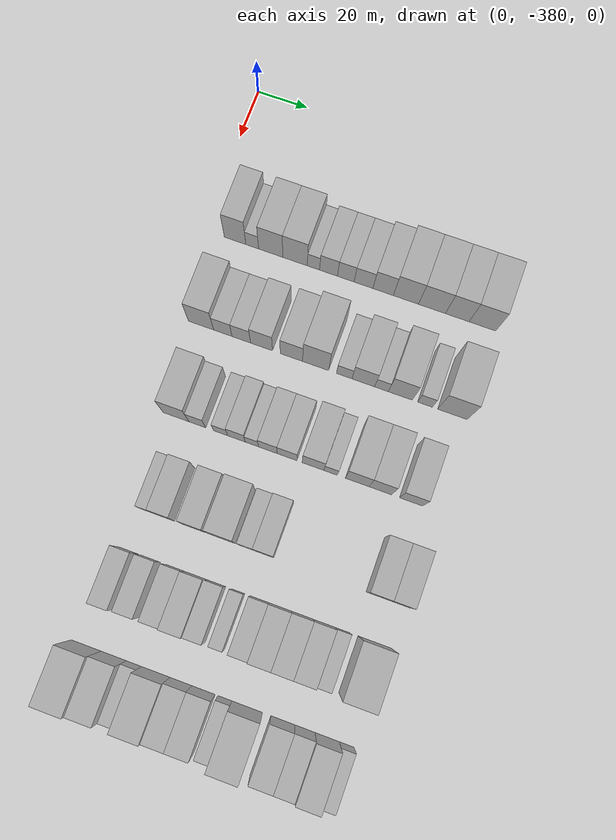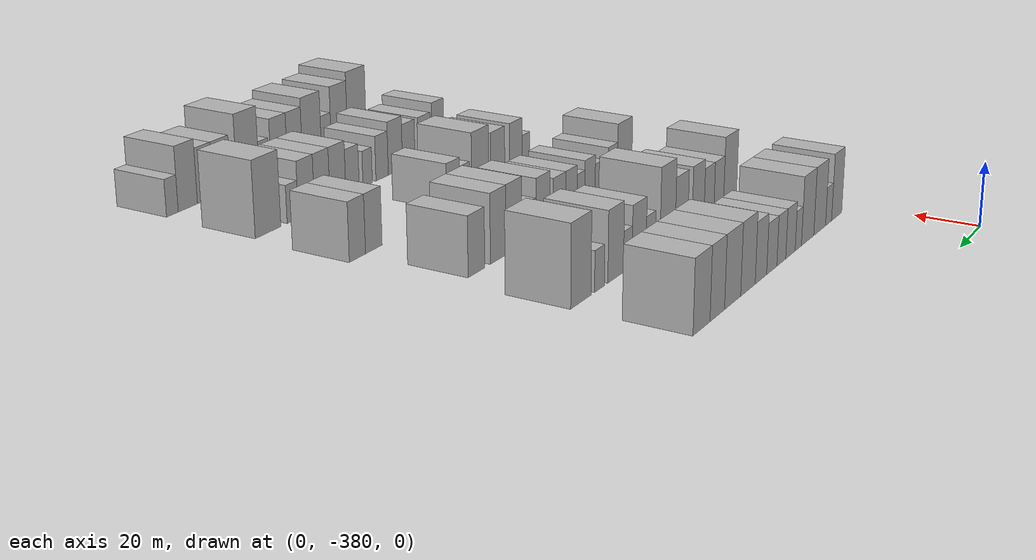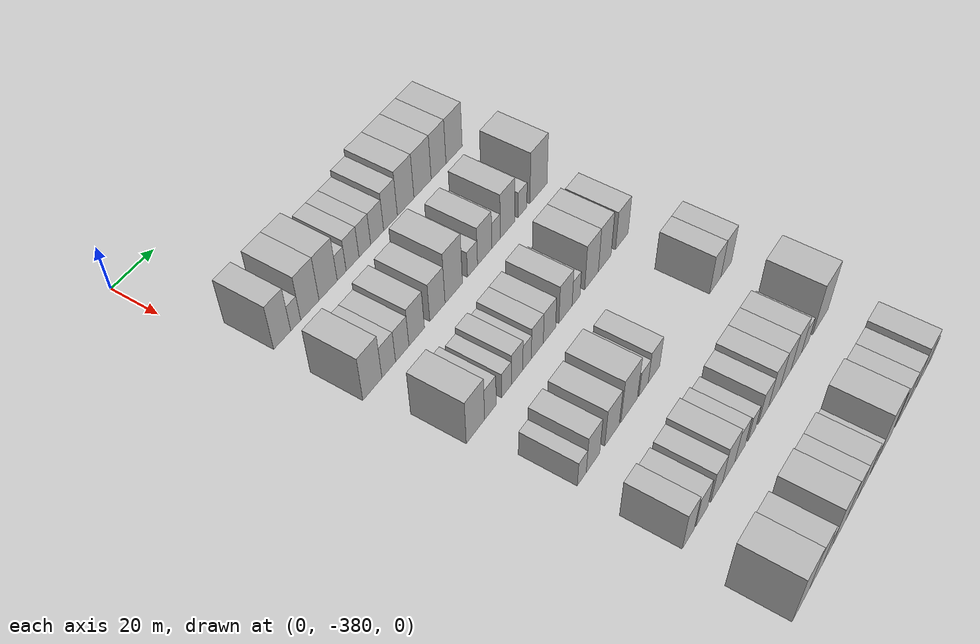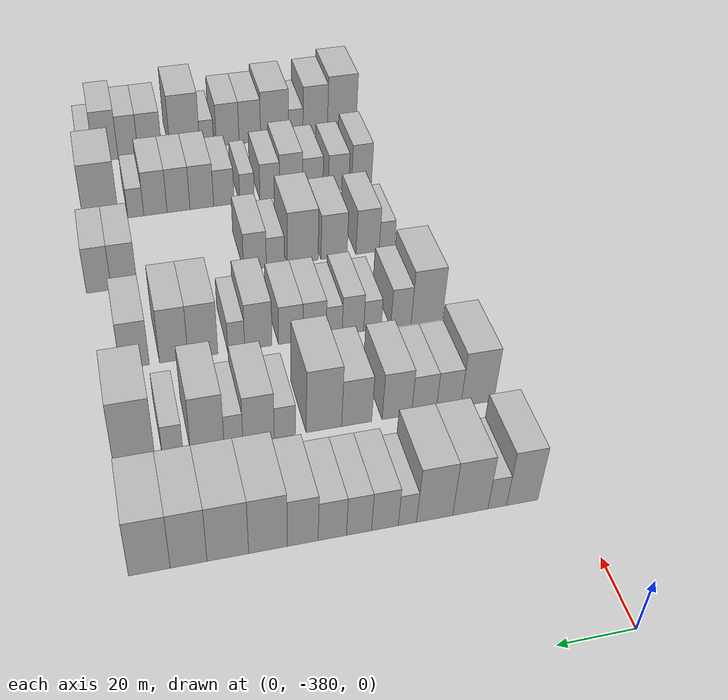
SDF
<sdf version="1.6">
 <world name="default">
  <model name="building_21">
   <static>1</static>
   <pose>50.0000 -367.0154 0 0.000000 0.000000 0.000000</pose>
   <link name="link">
    <pose>0 0 10.50 0 0 0</pose>
    <collision name="collision"><geometry><box><size>20.0000 8.5805 21.0000</size></box></geometry></collision>
    <visual name="visual">
     <cast_shadows>0</cast_shadows>
     <geometry><box><size>20.0000 8.5805 21.0000</size></box></geometry>
     <material>
      <script>
       <uri>model://HANNAS_wall/materials/scripts</uri>
       <uri>model://HANNAS_wall/materials/textures</uri>
       <name>vrc/HANNAS_wall</name>
      </script>
     </material>
    </visual>
   </link>
  </model>
  <model name="building_22">
   <static>1</static>
   <pose>50.0000 -360.1869 0 0.000000 0.000000 0.000000</pose>
   <link name="link">
    <pose>0 0 6.00 0 0 0</pose>
    <collision name="collision"><geometry><box><size>20.0000 5.0764 12.0000</size></box></geometry></collision>
    <visual name="visual">
     <cast_shadows>0</cast_shadows>
     <geometry><box><size>20.0000 5.0764 12.0000</size></box></geometry>
     <material>
      <script>
       <uri>model://HANNAS_wall/materials/scripts</uri>
       <uri>model://HANNAS_wall/materials/textures</uri>
       <name>vrc/HANNAS_wall</name>
      </script>
     </material>
    </visual>
   </link>
  </model>
  <model name="building_23">
   <static>1</static>
   <pose>50.0000 -352.8688 0 0.000000 0.000000 0.000000</pose>
   <link name="link">
    <pose>0 0 10.50 0 0 0</pose>
    <collision name="collision"><geometry><box><size>20.0000 9.5598 21.0000</size></box></geometry></collision>
    <visual name="visual">
     <cast_shadows>0</cast_shadows>
     <geometry><box><size>20.0000 9.5598 21.0000</size></box></geometry>
     <material>
      <script>
       <uri>model://HANNAS_wall/materials/scripts</uri>
       <uri>model://HANNAS_wall/materials/textures</uri>
       <name>vrc/HANNAS_wall</name>
      </script>
     </material>
    </visual>
   </link>
  </model>
  <model name="building_24">
   <static>1</static>
   <pose>50.0000 -343.2415 0 0.000000 0.000000 0.000000</pose>
   <link name="link">
    <pose>0 0 10.50 0 0 0</pose>
    <collision name="collision"><geometry><box><size>20.0000 9.6949 21.0000</size></box></geometry></collision>
    <visual name="visual">
     <cast_shadows>0</cast_shadows>
     <geometry><box><size>20.0000 9.6949 21.0000</size></box></geometry>
     <material>
      <script>
       <uri>model://HANNAS_wall/materials/scripts</uri>
       <uri>model://HANNAS_wall/materials/textures</uri>
       <name>vrc/HANNAS_wall</name>
      </script>
     </material>
    </visual>
   </link>
  </model>
  <model name="building_25">
   <static>1</static>
   <pose>50.0000 -335.9683 0 0.000000 0.000000 0.000000</pose>
   <link name="link">
    <pose>0 0 6.00 0 0 0</pose>
    <collision name="collision"><geometry><box><size>20.0000 4.8514 12.0000</size></box></geometry></collision>
    <visual name="visual">
     <cast_shadows>0</cast_shadows>
     <geometry><box><size>20.0000 4.8514 12.0000</size></box></geometry>
     <material>
      <script>
       <uri>model://HANNAS_wall/materials/scripts</uri>
       <uri>model://HANNAS_wall/materials/textures</uri>
       <name>vrc/HANNAS_wall</name>
      </script>
     </material>
    </visual>
   </link>
  </model>
  <model name="building_26">
   <static>1</static>
   <pose>50.0000 -330.0134 0 0.000000 0.000000 0.000000</pose>
   <link name="link">
    <pose>0 0 7.50 0 0 0</pose>
    <collision name="collision"><geometry><box><size>20.0000 7.0583 15.0000</size></box></geometry></collision>
    <visual name="visual">
     <cast_shadows>0</cast_shadows>
     <geometry><box><size>20.0000 7.0583 15.0000</size></box></geometry>
     <material>
      <script>
       <uri>model://HANNAS_wall/materials/scripts</uri>
       <uri>model://HANNAS_wall/materials/textures</uri>
       <name>vrc/HANNAS_wall</name>
      </script>
     </material>
    </visual>
   </link>
  </model>
  <model name="building_27">
   <static>1</static>
   <pose>50.0000 -323.2139 0 0.000000 0.000000 0.000000</pose>
   <link name="link">
    <pose>0 0 7.50 0 0 0</pose>
    <collision name="collision"><geometry><box><size>20.0000 6.5406 15.0000</size></box></geometry></collision>
    <visual name="visual">
     <cast_shadows>0</cast_shadows>
     <geometry><box><size>20.0000 6.5406 15.0000</size></box></geometry>
     <material>
      <script>
       <uri>model://HANNAS_wall/materials/scripts</uri>
       <uri>model://HANNAS_wall/materials/textures</uri>
       <name>vrc/HANNAS_wall</name>
      </script>
     </material>
    </visual>
   </link>
  </model>
  <model name="building_28">
   <static>1</static>
   <pose>50.0000 -316.2606 0 0.000000 0.000000 0.000000</pose>
   <link name="link">
    <pose>0 0 7.50 0 0 0</pose>
    <collision name="collision"><geometry><box><size>20.0000 7.3660 15.0000</size></box></geometry></collision>
    <visual name="visual">
     <cast_shadows>0</cast_shadows>
     <geometry><box><size>20.0000 7.3660 15.0000</size></box></geometry>
     <material>
      <script>
       <uri>model://HANNAS_wall/materials/scripts</uri>
       <uri>model://HANNAS_wall/materials/textures</uri>
       <name>vrc/HANNAS_wall</name>
      </script>
     </material>
    </visual>
   </link>
  </model>
  <model name="building_29">
   <static>1</static>
   <pose>50.0000 -308.5923 0 0.000000 0.000000 0.000000</pose>
   <link name="link">
    <pose>0 0 9.00 0 0 0</pose>
    <collision name="collision"><geometry><box><size>20.0000 7.9706 18.0000</size></box></geometry></collision>
    <visual name="visual">
     <cast_shadows>0</cast_shadows>
     <geometry><box><size>20.0000 7.9706 18.0000</size></box></geometry>
     <material>
      <script>
       <uri>model://HANNAS_wall/materials/scripts</uri>
       <uri>model://HANNAS_wall/materials/textures</uri>
       <name>vrc/HANNAS_wall</name>
      </script>
     </material>
    </visual>
   </link>
  </model>
  <model name="building_30">
   <static>1</static>
   <pose>50.0000 -299.7059 0 0.000000 0.000000 0.000000</pose>
   <link name="link">
    <pose>0 0 10.50 0 0 0</pose>
    <collision name="collision"><geometry><box><size>20.0000 9.8024 21.0000</size></box></geometry></collision>
    <visual name="visual">
     <cast_shadows>0</cast_shadows>
     <geometry><box><size>20.0000 9.8024 21.0000</size></box></geometry>
     <material>
      <script>
       <uri>model://HANNAS_wall/materials/scripts</uri>
       <uri>model://HANNAS_wall/materials/textures</uri>
       <name>vrc/HANNAS_wall</name>
      </script>
     </material>
    </visual>
   </link>
  </model>
  <model name="building_31">
   <static>1</static>
   <pose>50.0000 -289.5650 0 0.000000 0.000000 0.000000</pose>
   <link name="link">
    <pose>0 0 10.50 0 0 0</pose>
    <collision name="collision"><geometry><box><size>20.0000 10.4794 21.0000</size></box></geometry></collision>
    <visual name="visual">
     <cast_shadows>0</cast_shadows>
     <geometry><box><size>20.0000 10.4794 21.0000</size></box></geometry>
     <material>
      <script>
       <uri>model://HANNAS_wall/materials/scripts</uri>
       <uri>model://HANNAS_wall/materials/textures</uri>
       <name>vrc/HANNAS_wall</name>
      </script>
     </material>
    </visual>
   </link>
  </model>
  <model name="building_32">
   <static>1</static>
   <pose>50.0000 -279.7519 0 0.000000 0.000000 0.000000</pose>
   <link name="link">
    <pose>0 0 10.50 0 0 0</pose>
    <collision name="collision"><geometry><box><size>20.0000 9.1468 21.0000</size></box></geometry></collision>
    <visual name="visual">
     <cast_shadows>0</cast_shadows>
     <geometry><box><size>20.0000 9.1468 21.0000</size></box></geometry>
     <material>
      <script>
       <uri>model://HANNAS_wall/materials/scripts</uri>
       <uri>model://HANNAS_wall/materials/textures</uri>
       <name>vrc/HANNAS_wall</name>
      </script>
     </material>
    </visual>
   </link>
  </model>
  <model name="building_33">
   <static>1</static>
   <pose>50.0000 -270.0354 0 0.000000 0.000000 0.000000</pose>
   <link name="link">
    <pose>0 0 10.50 0 0 0</pose>
    <collision name="collision"><geometry><box><size>20.0000 10.2861 21.0000</size></box></geometry></collision>
    <visual name="visual">
     <cast_shadows>0</cast_shadows>
     <geometry><box><size>20.0000 10.2861 21.0000</size></box></geometry>
     <material>
      <script>
       <uri>model://HANNAS_wall/materials/scripts</uri>
       <uri>model://HANNAS_wall/materials/textures</uri>
       <name>vrc/HANNAS_wall</name>
      </script>
     </material>
    </visual>
   </link>
  </model>
  <model name="building_151">
   <static>1</static>
   <pose>85.0000 -367.1614 0 0.000000 0.000000 0.000000</pose>
   <link name="link">
    <pose>0 0 10.50 0 0 0</pose>
    <collision name="collision"><geometry><box><size>20.0000 9.8823 21.0000</size></box></geometry></collision>
    <visual name="visual">
     <cast_shadows>0</cast_shadows>
     <geometry><box><size>20.0000 9.8823 21.0000</size></box></geometry>
     <material>
      <script>
       <uri>model://HANNAS_wall/materials/scripts</uri>
       <uri>model://HANNAS_wall/materials/textures</uri>
       <name>vrc/HANNAS_wall</name>
      </script>
     </material>
    </visual>
   </link>
  </model>
  <model name="building_152">
   <static>1</static>
   <pose>85.0000 -358.6067 0 0.000000 0.000000 0.000000</pose>
   <link name="link">
    <pose>0 0 7.50 0 0 0</pose>
    <collision name="collision"><geometry><box><size>20.0000 7.2273 15.0000</size></box></geometry></collision>
    <visual name="visual">
     <cast_shadows>0</cast_shadows>
     <geometry><box><size>20.0000 7.2273 15.0000</size></box></geometry>
     <material>
      <script>
       <uri>model://HANNAS_wall/materials/scripts</uri>
       <uri>model://HANNAS_wall/materials/textures</uri>
       <name>vrc/HANNAS_wall</name>
      </script>
     </material>
    </visual>
   </link>
  </model>
  <model name="building_153">
   <static>1</static>
   <pose>85.0000 -351.3800 0 0.000000 0.000000 0.000000</pose>
   <link name="link">
    <pose>0 0 7.50 0 0 0</pose>
    <collision name="collision"><geometry><box><size>20.0000 7.2260 15.0000</size></box></geometry></collision>
    <visual name="visual">
     <cast_shadows>0</cast_shadows>
     <geometry><box><size>20.0000 7.2260 15.0000</size></box></geometry>
     <material>
      <script>
       <uri>model://HANNAS_wall/materials/scripts</uri>
       <uri>model://HANNAS_wall/materials/textures</uri>
       <name>vrc/HANNAS_wall</name>
      </script>
     </material>
    </visual>
   </link>
  </model>
  <model name="building_154">
   <static>1</static>
   <pose>85.0000 -343.5061 0 0.000000 0.000000 0.000000</pose>
   <link name="link">
    <pose>0 0 9.00 0 0 0</pose>
    <collision name="collision"><geometry><box><size>20.0000 8.5218 18.0000</size></box></geometry></collision>
    <visual name="visual">
     <cast_shadows>0</cast_shadows>
     <geometry><box><size>20.0000 8.5218 18.0000</size></box></geometry>
     <material>
      <script>
       <uri>model://HANNAS_wall/materials/scripts</uri>
       <uri>model://HANNAS_wall/materials/textures</uri>
       <name>vrc/HANNAS_wall</name>
      </script>
     </material>
    </visual>
   </link>
  </model>
  <model name="building_155">
   <static>1</static>
   <pose>85.0000 -331.9261 0 0.000000 0.000000 0.000000</pose>
   <link name="link">
    <pose>0 0 9.00 0 0 0</pose>
    <collision name="collision"><geometry><box><size>20.0000 8.6381 18.0000</size></box></geometry></collision>
    <visual name="visual">
     <cast_shadows>0</cast_shadows>
     <geometry><box><size>20.0000 8.6381 18.0000</size></box></geometry>
     <material>
      <script>
       <uri>model://HANNAS_wall/materials/scripts</uri>
       <uri>model://HANNAS_wall/materials/textures</uri>
       <name>vrc/HANNAS_wall</name>
      </script>
     </material>
    </visual>
   </link>
  </model>
  <model name="building_156">
   <static>1</static>
   <pose>85.0000 -322.5673 0 0.000000 0.000000 0.000000</pose>
   <link name="link">
    <pose>0 0 12.00 0 0 0</pose>
    <collision name="collision"><geometry><box><size>20.0000 10.0795 24.0000</size></box></geometry></collision>
    <visual name="visual">
     <cast_shadows>0</cast_shadows>
     <geometry><box><size>20.0000 10.0795 24.0000</size></box></geometry>
     <material>
      <script>
       <uri>model://HANNAS_wall/materials/scripts</uri>
       <uri>model://HANNAS_wall/materials/textures</uri>
       <name>vrc/HANNAS_wall</name>
      </script>
     </material>
    </visual>
   </link>
  </model>
  <model name="building_157">
   <static>1</static>
   <pose>85.0000 -311.5430 0 0.000000 0.000000 0.000000</pose>
   <link name="link">
    <pose>0 0 6.00 0 0 0</pose>
    <collision name="collision"><geometry><box><size>20.0000 5.9689 12.0000</size></box></geometry></collision>
    <visual name="visual">
     <cast_shadows>0</cast_shadows>
     <geometry><box><size>20.0000 5.9689 12.0000</size></box></geometry>
     <material>
      <script>
       <uri>model://HANNAS_wall/materials/scripts</uri>
       <uri>model://HANNAS_wall/materials/textures</uri>
       <name>vrc/HANNAS_wall</name>
      </script>
     </material>
    </visual>
   </link>
  </model>
  <model name="building_158">
   <static>1</static>
   <pose>85.0000 -304.2019 0 0.000000 0.000000 0.000000</pose>
   <link name="link">
    <pose>0 0 9.00 0 0 0</pose>
    <collision name="collision"><geometry><box><size>20.0000 8.7133 18.0000</size></box></geometry></collision>
    <visual name="visual">
     <cast_shadows>0</cast_shadows>
     <geometry><box><size>20.0000 8.7133 18.0000</size></box></geometry>
     <material>
      <script>
       <uri>model://HANNAS_wall/materials/scripts</uri>
       <uri>model://HANNAS_wall/materials/textures</uri>
       <name>vrc/HANNAS_wall</name>
      </script>
     </material>
    </visual>
   </link>
  </model>
  <model name="building_159">
   <static>1</static>
   <pose>85.0000 -297.2481 0 0.000000 0.000000 0.000000</pose>
   <link name="link">
    <pose>0 0 6.00 0 0 0</pose>
    <collision name="collision"><geometry><box><size>20.0000 5.1942 12.0000</size></box></geometry></collision>
    <visual name="visual">
     <cast_shadows>0</cast_shadows>
     <geometry><box><size>20.0000 5.1942 12.0000</size></box></geometry>
     <material>
      <script>
       <uri>model://HANNAS_wall/materials/scripts</uri>
       <uri>model://HANNAS_wall/materials/textures</uri>
       <name>vrc/HANNAS_wall</name>
      </script>
     </material>
    </visual>
   </link>
  </model>
  <model name="building_160">
   <static>1</static>
   <pose>85.0000 -290.0310 0 0.000000 0.000000 0.000000</pose>
   <link name="link">
    <pose>0 0 10.50 0 0 0</pose>
    <collision name="collision"><geometry><box><size>20.0000 9.2399 21.0000</size></box></geometry></collision>
    <visual name="visual">
     <cast_shadows>0</cast_shadows>
     <geometry><box><size>20.0000 9.2399 21.0000</size></box></geometry>
     <material>
      <script>
       <uri>model://HANNAS_wall/materials/scripts</uri>
       <uri>model://HANNAS_wall/materials/textures</uri>
       <name>vrc/HANNAS_wall</name>
      </script>
     </material>
    </visual>
   </link>
  </model>
  <model name="building_161">
   <static>1</static>
   <pose>85.0000 -280.5943 0 0.000000 0.000000 0.000000</pose>
   <link name="link">
    <pose>0 0 6.00 0 0 0</pose>
    <collision name="collision"><geometry><box><size>20.0000 5.6335 12.0000</size></box></geometry></collision>
    <visual name="visual">
     <cast_shadows>0</cast_shadows>
     <geometry><box><size>20.0000 5.6335 12.0000</size></box></geometry>
     <material>
      <script>
       <uri>model://HANNAS_wall/materials/scripts</uri>
       <uri>model://HANNAS_wall/materials/textures</uri>
       <name>vrc/HANNAS_wall</name>
      </script>
     </material>
    </visual>
   </link>
  </model>
  <model name="building_162">
   <static>1</static>
   <pose>85.0000 -270.1729 0 0.000000 0.000000 0.000000</pose>
   <link name="link">
    <pose>0 0 12.00 0 0 0</pose>
    <collision name="collision"><geometry><box><size>20.0000 11.2093 24.0000</size></box></geometry></collision>
    <visual name="visual">
     <cast_shadows>0</cast_shadows>
     <geometry><box><size>20.0000 11.2093 24.0000</size></box></geometry>
     <material>
      <script>
       <uri>model://HANNAS_wall/materials/scripts</uri>
       <uri>model://HANNAS_wall/materials/textures</uri>
       <name>vrc/HANNAS_wall</name>
      </script>
     </material>
    </visual>
   </link>
  </model>
  <model name="building_278">
   <static>1</static>
   <pose>120.0000 -363.3357 0 0.000000 0.000000 0.000000</pose>
   <link name="link">
    <pose>0 0 10.50 0 0 0</pose>
    <collision name="collision"><geometry><box><size>20.0000 9.9531 21.0000</size></box></geometry></collision>
    <visual name="visual">
     <cast_shadows>0</cast_shadows>
     <geometry><box><size>20.0000 9.9531 21.0000</size></box></geometry>
     <material>
      <script>
       <uri>model://HANNAS_wall/materials/scripts</uri>
       <uri>model://HANNAS_wall/materials/textures</uri>
       <name>vrc/HANNAS_wall</name>
      </script>
     </material>
    </visual>
   </link>
  </model>
  <model name="building_279">
   <static>1</static>
   <pose>120.0000 -355.1322 0 0.000000 0.000000 0.000000</pose>
   <link name="link">
    <pose>0 0 7.50 0 0 0</pose>
    <collision name="collision"><geometry><box><size>20.0000 6.4540 15.0000</size></box></geometry></collision>
    <visual name="visual">
     <cast_shadows>0</cast_shadows>
     <geometry><box><size>20.0000 6.4540 15.0000</size></box></geometry>
     <material>
      <script>
       <uri>model://HANNAS_wall/materials/scripts</uri>
       <uri>model://HANNAS_wall/materials/textures</uri>
       <name>vrc/HANNAS_wall</name>
      </script>
     </material>
    </visual>
   </link>
  </model>
  <model name="building_280">
   <static>1</static>
   <pose>120.0000 -346.1483 0 0.000000 0.000000 0.000000</pose>
   <link name="link">
    <pose>0 0 6.00 0 0 0</pose>
    <collision name="collision"><geometry><box><size>20.0000 5.5138 12.0000</size></box></geometry></collision>
    <visual name="visual">
     <cast_shadows>0</cast_shadows>
     <geometry><box><size>20.0000 5.5138 12.0000</size></box></geometry>
     <material>
      <script>
       <uri>model://HANNAS_wall/materials/scripts</uri>
       <uri>model://HANNAS_wall/materials/textures</uri>
       <name>vrc/HANNAS_wall</name>
      </script>
     </material>
    </visual>
   </link>
  </model>
  <model name="building_281">
   <static>1</static>
   <pose>120.0000 -340.0378 0 0.000000 0.000000 0.000000</pose>
   <link name="link">
    <pose>0 0 7.50 0 0 0</pose>
    <collision name="collision"><geometry><box><size>20.0000 6.7072 15.0000</size></box></geometry></collision>
    <visual name="visual">
     <cast_shadows>0</cast_shadows>
     <geometry><box><size>20.0000 6.7072 15.0000</size></box></geometry>
     <material>
      <script>
       <uri>model://HANNAS_wall/materials/scripts</uri>
       <uri>model://HANNAS_wall/materials/textures</uri>
       <name>vrc/HANNAS_wall</name>
      </script>
     </material>
    </visual>
   </link>
  </model>
  <model name="building_282">
   <static>1</static>
   <pose>120.0000 -334.1928 0 0.000000 0.000000 0.000000</pose>
   <link name="link">
    <pose>0 0 6.00 0 0 0</pose>
    <collision name="collision"><geometry><box><size>20.0000 4.9827 12.0000</size></box></geometry></collision>
    <visual name="visual">
     <cast_shadows>0</cast_shadows>
     <geometry><box><size>20.0000 4.9827 12.0000</size></box></geometry>
     <material>
      <script>
       <uri>model://HANNAS_wall/materials/scripts</uri>
       <uri>model://HANNAS_wall/materials/textures</uri>
       <name>vrc/HANNAS_wall</name>
      </script>
     </material>
    </visual>
   </link>
  </model>
  <model name="building_283">
   <static>1</static>
   <pose>120.0000 -328.1377 0 0.000000 0.000000 0.000000</pose>
   <link name="link">
    <pose>0 0 7.50 0 0 0</pose>
    <collision name="collision"><geometry><box><size>20.0000 7.1274 15.0000</size></box></geometry></collision>
    <visual name="visual">
     <cast_shadows>0</cast_shadows>
     <geometry><box><size>20.0000 7.1274 15.0000</size></box></geometry>
     <material>
      <script>
       <uri>model://HANNAS_wall/materials/scripts</uri>
       <uri>model://HANNAS_wall/materials/textures</uri>
       <name>vrc/HANNAS_wall</name>
      </script>
     </material>
    </visual>
   </link>
  </model>
  <model name="building_284">
   <static>1</static>
   <pose>120.0000 -320.8455 0 0.000000 0.000000 0.000000</pose>
   <link name="link">
    <pose>0 0 7.50 0 0 0</pose>
    <collision name="collision"><geometry><box><size>20.0000 7.4570 15.0000</size></box></geometry></collision>
    <visual name="visual">
     <cast_shadows>0</cast_shadows>
     <geometry><box><size>20.0000 7.4570 15.0000</size></box></geometry>
     <material>
      <script>
       <uri>model://HANNAS_wall/materials/scripts</uri>
       <uri>model://HANNAS_wall/materials/textures</uri>
       <name>vrc/HANNAS_wall</name>
      </script>
     </material>
    </visual>
   </link>
  </model>
  <model name="building_285">
   <static>1</static>
   <pose>120.0000 -310.9890 0 0.000000 0.000000 0.000000</pose>
   <link name="link">
    <pose>0 0 9.00 0 0 0</pose>
    <collision name="collision"><geometry><box><size>20.0000 8.2561 18.0000</size></box></geometry></collision>
    <visual name="visual">
     <cast_shadows>0</cast_shadows>
     <geometry><box><size>20.0000 8.2561 18.0000</size></box></geometry>
     <material>
      <script>
       <uri>model://HANNAS_wall/materials/scripts</uri>
       <uri>model://HANNAS_wall/materials/textures</uri>
       <name>vrc/HANNAS_wall</name>
      </script>
     </material>
    </visual>
   </link>
  </model>
  <model name="building_286">
   <static>1</static>
   <pose>120.0000 -304.3283 0 0.000000 0.000000 0.000000</pose>
   <link name="link">
    <pose>0 0 6.00 0 0 0</pose>
    <collision name="collision"><geometry><box><size>20.0000 5.0653 12.0000</size></box></geometry></collision>
    <visual name="visual">
     <cast_shadows>0</cast_shadows>
     <geometry><box><size>20.0000 5.0653 12.0000</size></box></geometry>
     <material>
      <script>
       <uri>model://HANNAS_wall/materials/scripts</uri>
       <uri>model://HANNAS_wall/materials/textures</uri>
       <name>vrc/HANNAS_wall</name>
      </script>
     </material>
    </visual>
   </link>
  </model>
  <model name="building_287">
   <static>1</static>
   <pose>120.0000 -294.3593 0 0.000000 0.000000 0.000000</pose>
   <link name="link">
    <pose>0 0 10.50 0 0 0</pose>
    <collision name="collision"><geometry><box><size>20.0000 8.8726 21.0000</size></box></geometry></collision>
    <visual name="visual">
     <cast_shadows>0</cast_shadows>
     <geometry><box><size>20.0000 8.8726 21.0000</size></box></geometry>
     <material>
      <script>
       <uri>model://HANNAS_wall/materials/scripts</uri>
       <uri>model://HANNAS_wall/materials/textures</uri>
       <name>vrc/HANNAS_wall</name>
      </script>
     </material>
    </visual>
   </link>
  </model>
  <model name="building_288">
   <static>1</static>
   <pose>120.0000 -285.6968 0 0.000000 0.000000 0.000000</pose>
   <link name="link">
    <pose>0 0 10.50 0 0 0</pose>
    <collision name="collision"><geometry><box><size>20.0000 8.4525 21.0000</size></box></geometry></collision>
    <visual name="visual">
     <cast_shadows>0</cast_shadows>
     <geometry><box><size>20.0000 8.4525 21.0000</size></box></geometry>
     <material>
      <script>
       <uri>model://HANNAS_wall/materials/scripts</uri>
       <uri>model://HANNAS_wall/materials/textures</uri>
       <name>vrc/HANNAS_wall</name>
      </script>
     </material>
    </visual>
   </link>
  </model>
  <model name="building_289">
   <static>1</static>
   <pose>120.0000 -274.1619 0 0.000000 0.000000 0.000000</pose>
   <link name="link">
    <pose>0 0 9.00 0 0 0</pose>
    <collision name="collision"><geometry><box><size>20.0000 8.6172 18.0000</size></box></geometry></collision>
    <visual name="visual">
     <cast_shadows>0</cast_shadows>
     <geometry><box><size>20.0000 8.6172 18.0000</size></box></geometry>
     <material>
      <script>
       <uri>model://HANNAS_wall/materials/scripts</uri>
       <uri>model://HANNAS_wall/materials/textures</uri>
       <name>vrc/HANNAS_wall</name>
      </script>
     </material>
    </visual>
   </link>
  </model>
  <model name="building_405">
   <static>1</static>
   <pose>155.0000 -360.7253 0 0.000000 0.000000 0.000000</pose>
   <link name="link">
    <pose>0 0 6.00 0 0 0</pose>
    <collision name="collision"><geometry><box><size>20.0000 5.1084 12.0000</size></box></geometry></collision>
    <visual name="visual">
     <cast_shadows>0</cast_shadows>
     <geometry><box><size>20.0000 5.1084 12.0000</size></box></geometry>
     <material>
      <script>
       <uri>model://HANNAS_wall/materials/scripts</uri>
       <uri>model://HANNAS_wall/materials/textures</uri>
       <name>vrc/HANNAS_wall</name>
      </script>
     </material>
    </visual>
   </link>
  </model>
  <model name="building_406">
   <static>1</static>
   <pose>155.0000 -354.2302 0 0.000000 0.000000 0.000000</pose>
   <link name="link">
    <pose>0 0 9.00 0 0 0</pose>
    <collision name="collision"><geometry><box><size>20.0000 7.8817 18.0000</size></box></geometry></collision>
    <visual name="visual">
     <cast_shadows>0</cast_shadows>
     <geometry><box><size>20.0000 7.8817 18.0000</size></box></geometry>
     <material>
      <script>
       <uri>model://HANNAS_wall/materials/scripts</uri>
       <uri>model://HANNAS_wall/materials/textures</uri>
       <name>vrc/HANNAS_wall</name>
      </script>
     </material>
    </visual>
   </link>
  </model>
  <model name="building_407">
   <static>1</static>
   <pose>155.0000 -342.9310 0 0.000000 0.000000 0.000000</pose>
   <link name="link">
    <pose>0 0 9.00 0 0 0</pose>
    <collision name="collision"><geometry><box><size>20.0000 8.7169 18.0000</size></box></geometry></collision>
    <visual name="visual">
     <cast_shadows>0</cast_shadows>
     <geometry><box><size>20.0000 8.7169 18.0000</size></box></geometry>
     <material>
      <script>
       <uri>model://HANNAS_wall/materials/scripts</uri>
       <uri>model://HANNAS_wall/materials/textures</uri>
       <name>vrc/HANNAS_wall</name>
      </script>
     </material>
    </visual>
   </link>
  </model>
  <model name="building_408">
   <static>1</static>
   <pose>155.0000 -332.4608 0 0.000000 0.000000 0.000000</pose>
   <link name="link">
    <pose>0 0 10.50 0 0 0</pose>
    <collision name="collision"><geometry><box><size>20.0000 10.2235 21.0000</size></box></geometry></collision>
    <visual name="visual">
     <cast_shadows>0</cast_shadows>
     <geometry><box><size>20.0000 10.2235 21.0000</size></box></geometry>
     <material>
      <script>
       <uri>model://HANNAS_wall/materials/scripts</uri>
       <uri>model://HANNAS_wall/materials/textures</uri>
       <name>vrc/HANNAS_wall</name>
      </script>
     </material>
    </visual>
   </link>
  </model>
  <model name="building_409">
   <static>1</static>
   <pose>155.0000 -323.4086 0 0.000000 0.000000 0.000000</pose>
   <link name="link">
    <pose>0 0 6.00 0 0 0</pose>
    <collision name="collision"><geometry><box><size>20.0000 5.8809 12.0000</size></box></geometry></collision>
    <visual name="visual">
     <cast_shadows>0</cast_shadows>
     <geometry><box><size>20.0000 5.8809 12.0000</size></box></geometry>
     <material>
      <script>
       <uri>model://HANNAS_wall/materials/scripts</uri>
       <uri>model://HANNAS_wall/materials/textures</uri>
       <name>vrc/HANNAS_wall</name>
      </script>
     </material>
    </visual>
   </link>
  </model>
  <model name="building_410">
   <static>1</static>
   <pose>155.0000 -316.7437 0 0.000000 0.000000 0.000000</pose>
   <link name="link">
    <pose>0 0 7.50 0 0 0</pose>
    <collision name="collision"><geometry><box><size>20.0000 7.4489 15.0000</size></box></geometry></collision>
    <visual name="visual">
     <cast_shadows>0</cast_shadows>
     <geometry><box><size>20.0000 7.4489 15.0000</size></box></geometry>
     <material>
      <script>
       <uri>model://HANNAS_wall/materials/scripts</uri>
       <uri>model://HANNAS_wall/materials/textures</uri>
       <name>vrc/HANNAS_wall</name>
      </script>
     </material>
    </visual>
   </link>
  </model>
  <model name="building_411">
   <static>1</static>
   <pose>155.0000 -274.7762 0 0.000000 0.000000 0.000000</pose>
   <link name="link">
    <pose>0 0 9.00 0 0 0</pose>
    <collision name="collision"><geometry><box><size>20.0000 8.1620 18.0000</size></box></geometry></collision>
    <visual name="visual">
     <cast_shadows>0</cast_shadows>
     <geometry><box><size>20.0000 8.1620 18.0000</size></box></geometry>
     <material>
      <script>
       <uri>model://HANNAS_wall/materials/scripts</uri>
       <uri>model://HANNAS_wall/materials/textures</uri>
       <name>vrc/HANNAS_wall</name>
      </script>
     </material>
    </visual>
   </link>
  </model>
  <model name="building_412">
   <static>1</static>
   <pose>155.0000 -266.8092 0 0.000000 0.000000 0.000000</pose>
   <link name="link">
    <pose>0 0 9.00 0 0 0</pose>
    <collision name="collision"><geometry><box><size>20.0000 7.7719 18.0000</size></box></geometry></collision>
    <visual name="visual">
     <cast_shadows>0</cast_shadows>
     <geometry><box><size>20.0000 7.7719 18.0000</size></box></geometry>
     <material>
      <script>
       <uri>model://HANNAS_wall/materials/scripts</uri>
       <uri>model://HANNAS_wall/materials/textures</uri>
       <name>vrc/HANNAS_wall</name>
      </script>
     </material>
    </visual>
   </link>
  </model>
  <model name="building_535">
   <static>1</static>
   <pose>190.0000 -361.5928 0 0.000000 0.000000 0.000000</pose>
   <link name="link">
    <pose>0 0 9.00 0 0 0</pose>
    <collision name="collision"><geometry><box><size>20.0000 7.2122 18.0000</size></box></geometry></collision>
    <visual name="visual">
     <cast_shadows>0</cast_shadows>
     <geometry><box><size>20.0000 7.2122 18.0000</size></box></geometry>
     <material>
      <script>
       <uri>model://HANNAS_wall/materials/scripts</uri>
       <uri>model://HANNAS_wall/materials/textures</uri>
       <name>vrc/HANNAS_wall</name>
      </script>
     </material>
    </visual>
   </link>
  </model>
  <model name="building_536">
   <static>1</static>
   <pose>190.0000 -353.3032 0 0.000000 0.000000 0.000000</pose>
   <link name="link">
    <pose>0 0 7.50 0 0 0</pose>
    <collision name="collision"><geometry><box><size>20.0000 7.3670 15.0000</size></box></geometry></collision>
    <visual name="visual">
     <cast_shadows>0</cast_shadows>
     <geometry><box><size>20.0000 7.3670 15.0000</size></box></geometry>
     <material>
      <script>
       <uri>model://HANNAS_wall/materials/scripts</uri>
       <uri>model://HANNAS_wall/materials/textures</uri>
       <name>vrc/HANNAS_wall</name>
      </script>
     </material>
    </visual>
   </link>
  </model>
  <model name="building_537">
   <static>1</static>
   <pose>190.0000 -343.9513 0 0.000000 0.000000 0.000000</pose>
   <link name="link">
    <pose>0 0 7.50 0 0 0</pose>
    <collision name="collision"><geometry><box><size>20.0000 7.3368 15.0000</size></box></geometry></collision>
    <visual name="visual">
     <cast_shadows>0</cast_shadows>
     <geometry><box><size>20.0000 7.3368 15.0000</size></box></geometry>
     <material>
      <script>
       <uri>model://HANNAS_wall/materials/scripts</uri>
       <uri>model://HANNAS_wall/materials/textures</uri>
       <name>vrc/HANNAS_wall</name>
      </script>
     </material>
    </visual>
   </link>
  </model>
  <model name="building_538">
   <static>1</static>
   <pose>190.0000 -336.2301 0 0.000000 0.000000 0.000000</pose>
   <link name="link">
    <pose>0 0 9.00 0 0 0</pose>
    <collision name="collision"><geometry><box><size>20.0000 8.1055 18.0000</size></box></geometry></collision>
    <visual name="visual">
     <cast_shadows>0</cast_shadows>
     <geometry><box><size>20.0000 8.1055 18.0000</size></box></geometry>
     <material>
      <script>
       <uri>model://HANNAS_wall/materials/scripts</uri>
       <uri>model://HANNAS_wall/materials/textures</uri>
       <name>vrc/HANNAS_wall</name>
      </script>
     </material>
    </visual>
   </link>
  </model>
  <model name="building_539">
   <static>1</static>
   <pose>190.0000 -328.7280 0 0.000000 0.000000 0.000000</pose>
   <link name="link">
    <pose>0 0 7.50 0 0 0</pose>
    <collision name="collision"><geometry><box><size>20.0000 6.8987 15.0000</size></box></geometry></collision>
    <visual name="visual">
     <cast_shadows>0</cast_shadows>
     <geometry><box><size>20.0000 6.8987 15.0000</size></box></geometry>
     <material>
      <script>
       <uri>model://HANNAS_wall/materials/scripts</uri>
       <uri>model://HANNAS_wall/materials/textures</uri>
       <name>vrc/HANNAS_wall</name>
      </script>
     </material>
    </visual>
   </link>
  </model>
  <model name="building_540">
   <static>1</static>
   <pose>190.0000 -320.7334 0 0.000000 0.000000 0.000000</pose>
   <link name="link">
    <pose>0 0 6.00 0 0 0</pose>
    <collision name="collision"><geometry><box><size>20.0000 5.0906 12.0000</size></box></geometry></collision>
    <visual name="visual">
     <cast_shadows>0</cast_shadows>
     <geometry><box><size>20.0000 5.0906 12.0000</size></box></geometry>
     <material>
      <script>
       <uri>model://HANNAS_wall/materials/scripts</uri>
       <uri>model://HANNAS_wall/materials/textures</uri>
       <name>vrc/HANNAS_wall</name>
      </script>
     </material>
    </visual>
   </link>
  </model>
  <model name="building_541">
   <static>1</static>
   <pose>190.0000 -312.6396 0 0.000000 0.000000 0.000000</pose>
   <link name="link">
    <pose>0 0 7.50 0 0 0</pose>
    <collision name="collision"><geometry><box><size>20.0000 7.0969 15.0000</size></box></geometry></collision>
    <visual name="visual">
     <cast_shadows>0</cast_shadows>
     <geometry><box><size>20.0000 7.0969 15.0000</size></box></geometry>
     <material>
      <script>
       <uri>model://HANNAS_wall/materials/scripts</uri>
       <uri>model://HANNAS_wall/materials/textures</uri>
       <name>vrc/HANNAS_wall</name>
      </script>
     </material>
    </visual>
   </link>
  </model>
  <model name="building_542">
   <static>1</static>
   <pose>190.0000 -304.9782 0 0.000000 0.000000 0.000000</pose>
   <link name="link">
    <pose>0 0 9.00 0 0 0</pose>
    <collision name="collision"><geometry><box><size>20.0000 8.2261 18.0000</size></box></geometry></collision>
    <visual name="visual">
     <cast_shadows>0</cast_shadows>
     <geometry><box><size>20.0000 8.2261 18.0000</size></box></geometry>
     <material>
      <script>
       <uri>model://HANNAS_wall/materials/scripts</uri>
       <uri>model://HANNAS_wall/materials/textures</uri>
       <name>vrc/HANNAS_wall</name>
      </script>
     </material>
    </visual>
   </link>
  </model>
  <model name="building_543">
   <static>1</static>
   <pose>190.0000 -296.9335 0 0.000000 0.000000 0.000000</pose>
   <link name="link">
    <pose>0 0 9.00 0 0 0</pose>
    <collision name="collision"><geometry><box><size>20.0000 7.8631 18.0000</size></box></geometry></collision>
    <visual name="visual">
     <cast_shadows>0</cast_shadows>
     <geometry><box><size>20.0000 7.8631 18.0000</size></box></geometry>
     <material>
      <script>
       <uri>model://HANNAS_wall/materials/scripts</uri>
       <uri>model://HANNAS_wall/materials/textures</uri>
       <name>vrc/HANNAS_wall</name>
      </script>
     </material>
    </visual>
   </link>
  </model>
  <model name="building_544">
   <static>1</static>
   <pose>190.0000 -289.0254 0 0.000000 0.000000 0.000000</pose>
   <link name="link">
    <pose>0 0 9.00 0 0 0</pose>
    <collision name="collision"><geometry><box><size>20.0000 7.9531 18.0000</size></box></geometry></collision>
    <visual name="visual">
     <cast_shadows>0</cast_shadows>
     <geometry><box><size>20.0000 7.9531 18.0000</size></box></geometry>
     <material>
      <script>
       <uri>model://HANNAS_wall/materials/scripts</uri>
       <uri>model://HANNAS_wall/materials/textures</uri>
       <name>vrc/HANNAS_wall</name>
      </script>
     </material>
    </visual>
   </link>
  </model>
  <model name="building_545">
   <static>1</static>
   <pose>190.0000 -282.3157 0 0.000000 0.000000 0.000000</pose>
   <link name="link">
    <pose>0 0 6.00 0 0 0</pose>
    <collision name="collision"><geometry><box><size>20.0000 5.4663 12.0000</size></box></geometry></collision>
    <visual name="visual">
     <cast_shadows>0</cast_shadows>
     <geometry><box><size>20.0000 5.4663 12.0000</size></box></geometry>
     <material>
      <script>
       <uri>model://HANNAS_wall/materials/scripts</uri>
       <uri>model://HANNAS_wall/materials/textures</uri>
       <name>vrc/HANNAS_wall</name>
      </script>
     </material>
    </visual>
   </link>
  </model>
  <model name="building_546">
   <static>1</static>
   <pose>190.0000 -270.6405 0 0.000000 0.000000 0.000000</pose>
   <link name="link">
    <pose>0 0 12.00 0 0 0</pose>
    <collision name="collision"><geometry><box><size>20.0000 11.8842 24.0000</size></box></geometry></collision>
    <visual name="visual">
     <cast_shadows>0</cast_shadows>
     <geometry><box><size>20.0000 11.8842 24.0000</size></box></geometry>
     <material>
      <script>
       <uri>model://HANNAS_wall/materials/scripts</uri>
       <uri>model://HANNAS_wall/materials/textures</uri>
       <name>vrc/HANNAS_wall</name>
      </script>
     </material>
    </visual>
   </link>
  </model>
  <model name="building_660">
   <static>1</static>
   <pose>225.0000 -363.3693 0 0.000000 0.000000 0.000000</pose>
   <link name="link">
    <pose>0 0 12.00 0 0 0</pose>
    <collision name="collision"><geometry><box><size>20.0000 11.0820 24.0000</size></box></geometry></collision>
    <visual name="visual">
     <cast_shadows>0</cast_shadows>
     <geometry><box><size>20.0000 11.0820 24.0000</size></box></geometry>
     <material>
      <script>
       <uri>model://HANNAS_wall/materials/scripts</uri>
       <uri>model://HANNAS_wall/materials/textures</uri>
       <name>vrc/HANNAS_wall</name>
      </script>
     </material>
    </visual>
   </link>
  </model>
  <model name="building_661">
   <static>1</static>
   <pose>225.0000 -353.1370 0 0.000000 0.000000 0.000000</pose>
   <link name="link">
    <pose>0 0 10.50 0 0 0</pose>
    <collision name="collision"><geometry><box><size>20.0000 9.3827 21.0000</size></box></geometry></collision>
    <visual name="visual">
     <cast_shadows>0</cast_shadows>
     <geometry><box><size>20.0000 9.3827 21.0000</size></box></geometry>
     <material>
      <script>
       <uri>model://HANNAS_wall/materials/scripts</uri>
       <uri>model://HANNAS_wall/materials/textures</uri>
       <name>vrc/HANNAS_wall</name>
      </script>
     </material>
    </visual>
   </link>
  </model>
  <model name="building_662">
   <static>1</static>
   <pose>225.0000 -345.6650 0 0.000000 0.000000 0.000000</pose>
   <link name="link">
    <pose>0 0 6.00 0 0 0</pose>
    <collision name="collision"><geometry><box><size>20.0000 5.5613 12.0000</size></box></geometry></collision>
    <visual name="visual">
     <cast_shadows>0</cast_shadows>
     <geometry><box><size>20.0000 5.5613 12.0000</size></box></geometry>
     <material>
      <script>
       <uri>model://HANNAS_wall/materials/scripts</uri>
       <uri>model://HANNAS_wall/materials/textures</uri>
       <name>vrc/HANNAS_wall</name>
      </script>
     </material>
    </visual>
   </link>
  </model>
  <model name="building_663">
   <static>1</static>
   <pose>225.0000 -337.6476 0 0.000000 0.000000 0.000000</pose>
   <link name="link">
    <pose>0 0 10.50 0 0 0</pose>
    <collision name="collision"><geometry><box><size>20.0000 10.4733 21.0000</size></box></geometry></collision>
    <visual name="visual">
     <cast_shadows>0</cast_shadows>
     <geometry><box><size>20.0000 10.4733 21.0000</size></box></geometry>
     <material>
      <script>
       <uri>model://HANNAS_wall/materials/scripts</uri>
       <uri>model://HANNAS_wall/materials/textures</uri>
       <name>vrc/HANNAS_wall</name>
      </script>
     </material>
    </visual>
   </link>
  </model>
  <model name="building_664">
   <static>1</static>
   <pose>225.0000 -328.3850 0 0.000000 0.000000 0.000000</pose>
   <link name="link">
    <pose>0 0 9.00 0 0 0</pose>
    <collision name="collision"><geometry><box><size>20.0000 8.0520 18.0000</size></box></geometry></collision>
    <visual name="visual">
     <cast_shadows>0</cast_shadows>
     <geometry><box><size>20.0000 8.0520 18.0000</size></box></geometry>
     <material>
      <script>
       <uri>model://HANNAS_wall/materials/scripts</uri>
       <uri>model://HANNAS_wall/materials/textures</uri>
       <name>vrc/HANNAS_wall</name>
      </script>
     </material>
    </visual>
   </link>
  </model>
  <model name="building_665">
   <static>1</static>
   <pose>225.0000 -320.1203 0 0.000000 0.000000 0.000000</pose>
   <link name="link">
    <pose>0 0 9.00 0 0 0</pose>
    <collision name="collision"><geometry><box><size>20.0000 8.4774 18.0000</size></box></geometry></collision>
    <visual name="visual">
     <cast_shadows>0</cast_shadows>
     <geometry><box><size>20.0000 8.4774 18.0000</size></box></geometry>
     <material>
      <script>
       <uri>model://HANNAS_wall/materials/scripts</uri>
       <uri>model://HANNAS_wall/materials/textures</uri>
       <name>vrc/HANNAS_wall</name>
      </script>
     </material>
    </visual>
   </link>
  </model>
  <model name="building_666">
   <static>1</static>
   <pose>225.0000 -312.3070 0 0.000000 0.000000 0.000000</pose>
   <link name="link">
    <pose>0 0 6.00 0 0 0</pose>
    <collision name="collision"><geometry><box><size>20.0000 5.1492 12.0000</size></box></geometry></collision>
    <visual name="visual">
     <cast_shadows>0</cast_shadows>
     <geometry><box><size>20.0000 5.1492 12.0000</size></box></geometry>
     <material>
      <script>
       <uri>model://HANNAS_wall/materials/scripts</uri>
       <uri>model://HANNAS_wall/materials/textures</uri>
       <name>vrc/HANNAS_wall</name>
      </script>
     </material>
    </visual>
   </link>
  </model>
  <model name="building_667">
   <static>1</static>
   <pose>225.0000 -304.2251 0 0.000000 0.000000 0.000000</pose>
   <link name="link">
    <pose>0 0 12.00 0 0 0</pose>
    <collision name="collision"><geometry><box><size>20.0000 11.0146 24.0000</size></box></geometry></collision>
    <visual name="visual">
     <cast_shadows>0</cast_shadows>
     <geometry><box><size>20.0000 11.0146 24.0000</size></box></geometry>
     <material>
      <script>
       <uri>model://HANNAS_wall/materials/scripts</uri>
       <uri>model://HANNAS_wall/materials/textures</uri>
       <name>vrc/HANNAS_wall</name>
      </script>
     </material>
    </visual>
   </link>
  </model>
  <model name="building_668">
   <static>1</static>
   <pose>225.0000 -291.4177 0 0.000000 0.000000 0.000000</pose>
   <link name="link">
    <pose>0 0 9.00 0 0 0</pose>
    <collision name="collision"><geometry><box><size>20.0000 8.6001 18.0000</size></box></geometry></collision>
    <visual name="visual">
     <cast_shadows>0</cast_shadows>
     <geometry><box><size>20.0000 8.6001 18.0000</size></box></geometry>
     <material>
      <script>
       <uri>model://HANNAS_wall/materials/scripts</uri>
       <uri>model://HANNAS_wall/materials/textures</uri>
       <name>vrc/HANNAS_wall</name>
      </script>
     </material>
    </visual>
   </link>
  </model>
  <model name="building_669">
   <static>1</static>
   <pose>225.0000 -283.4707 0 0.000000 0.000000 0.000000</pose>
   <link name="link">
    <pose>0 0 9.00 0 0 0</pose>
    <collision name="collision"><geometry><box><size>20.0000 7.2941 18.0000</size></box></geometry></collision>
    <visual name="visual">
     <cast_shadows>0</cast_shadows>
     <geometry><box><size>20.0000 7.2941 18.0000</size></box></geometry>
     <material>
      <script>
       <uri>model://HANNAS_wall/materials/scripts</uri>
       <uri>model://HANNAS_wall/materials/textures</uri>
       <name>vrc/HANNAS_wall</name>
      </script>
     </material>
    </visual>
   </link>
  </model>
  <model name="building_670">
   <static>1</static>
   <pose>225.0000 -275.4525 0 0.000000 0.000000 0.000000</pose>
   <link name="link">
    <pose>0 0 10.50 0 0 0</pose>
    <collision name="collision"><geometry><box><size>20.0000 8.7423 21.0000</size></box></geometry></collision>
    <visual name="visual">
     <cast_shadows>0</cast_shadows>
     <geometry><box><size>20.0000 8.7423 21.0000</size></box></geometry>
     <material>
      <script>
       <uri>model://HANNAS_wall/materials/scripts</uri>
       <uri>model://HANNAS_wall/materials/textures</uri>
       <name>vrc/HANNAS_wall</name>
      </script>
     </material>
    </visual>
   </link>
  </model>
  <model name="building_671">
   <static>1</static>
   <pose>225.0000 -268.4682 0 0.000000 0.000000 0.000000</pose>
   <link name="link">
    <pose>0 0 6.00 0 0 0</pose>
    <collision name="collision"><geometry><box><size>20.0000 5.2263 12.0000</size></box></geometry></collision>
    <visual name="visual">
     <cast_shadows>0</cast_shadows>
     <geometry><box><size>20.0000 5.2263 12.0000</size></box></geometry>
     <material>
      <script>
       <uri>model://HANNAS_wall/materials/scripts</uri>
       <uri>model://HANNAS_wall/materials/textures</uri>
       <name>vrc/HANNAS_wall</name>
      </script>
     </material>
    </visual>
   </link>
  </model>
 </world>
</sdf>
